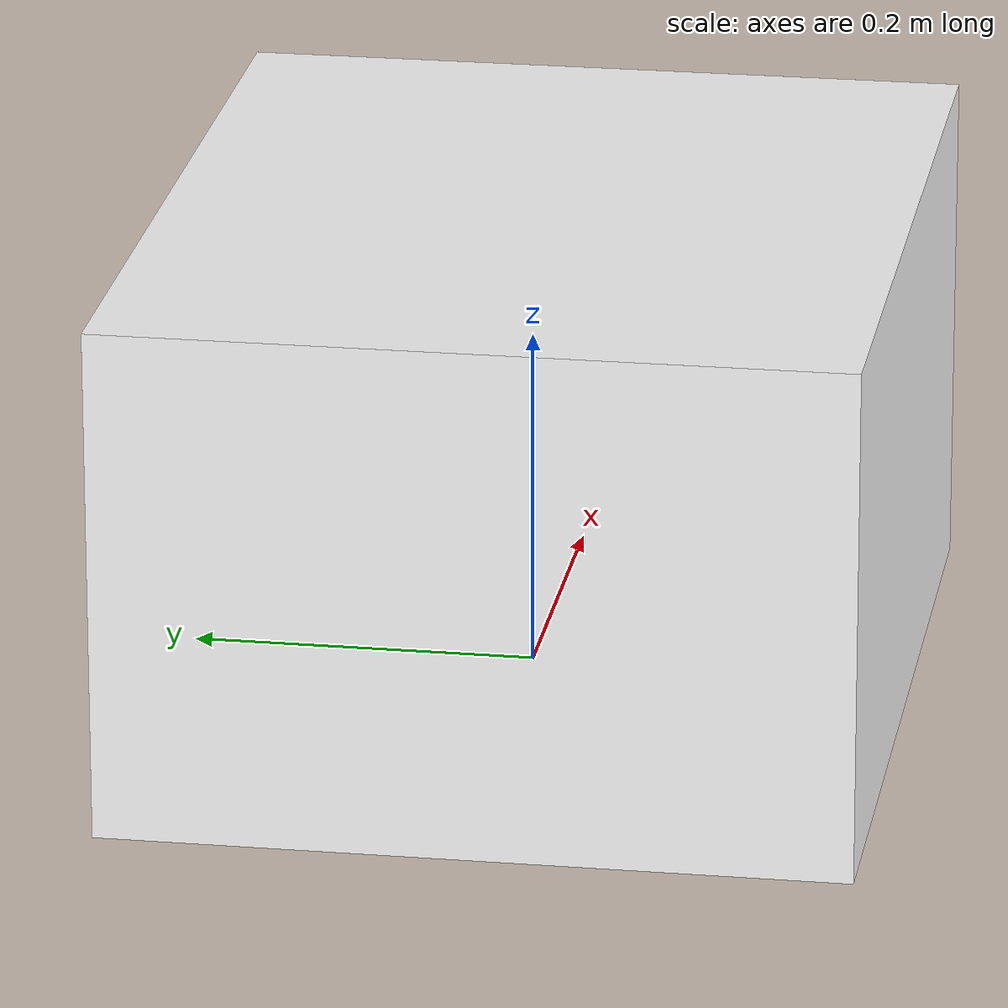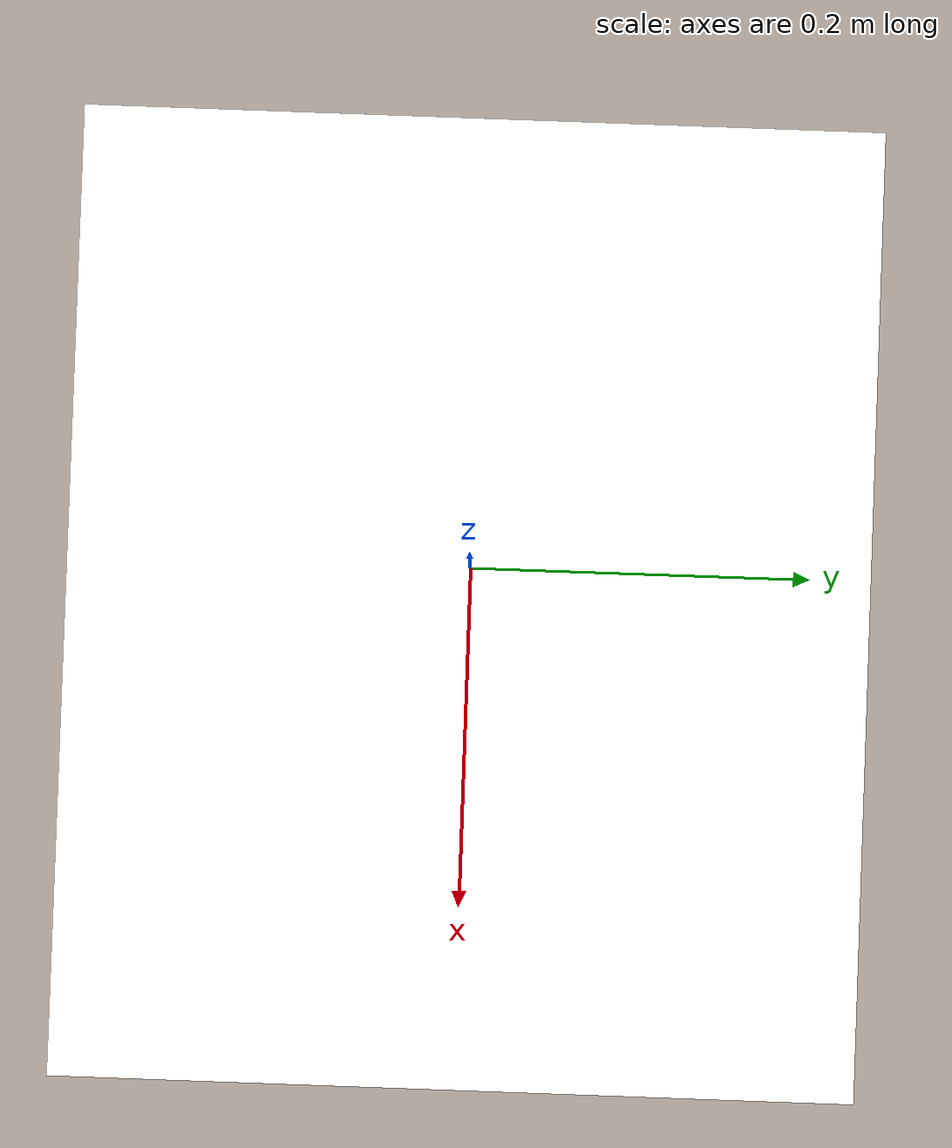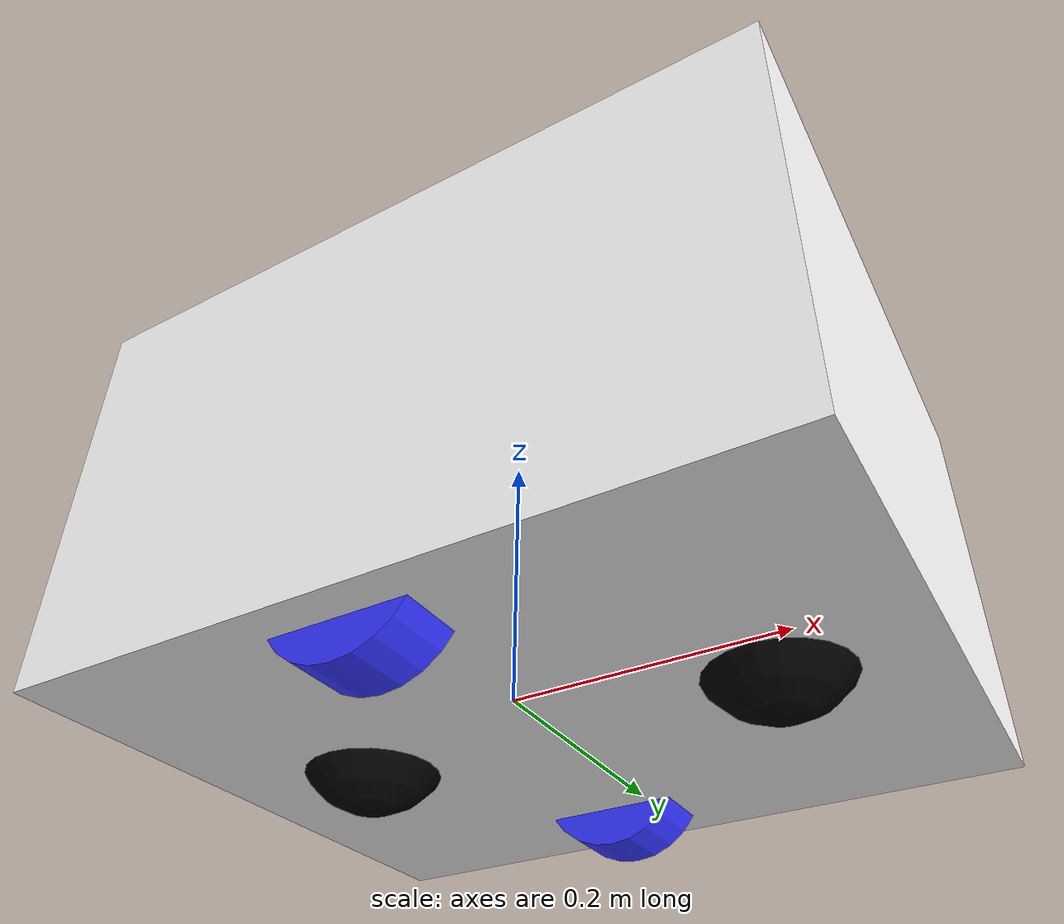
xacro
<?xml version="1.0"?>
<robot xmlns:xacro="http://www.ros.org/wiki/xacro">

    <xacro:include filename="inertial_macros.xacro" />

    <material name="white">
        <color rgba="1 1 1 1" />
    </material>

    <material name="orange">
        <color rgba="1 0.3 0.1 1" />
    </material>

    <material name="blue">
        <color rgba="0.2 0.2 1 1" />
    </material>

    <material name="black">
        <color rgba="0 0 0 1" />
    </material>

    <!--BASE
    LINK-->

    <link name="base_link">

    </link>

    <joint name="chassis_joint" type="fixed">
        <parent link="base_link" />
        <child link="chassis" />
        <origin xyz="-0.23 0 0" />
    </joint>

    <!--CHASSIS
    LINK-->

    <link name="chassis">
        <visual>
            <origin xyz="0.26 0 0.12" />
            <geometry>
                <box size="0.52 0.43 0.3" />
            </geometry>
            <material name="white" />
        </visual>
        <collision>
            <origin xyz="0.26 0 0.12" />
            <geometry>
                <box size="0.52 0.43 0.3" />
            </geometry>

        </collision>
        <xacro:inertial_box mass="2" x="0.52" y="0.43" z="0.3">
            <origin xyz="0.26 0 0.12" />
        </xacro:inertial_box>
    </link>
    <gazebo reference="chassis">
        <material>Gazebo/White</material>
    </gazebo>

    <!--LEFT
    WHEEL LINK-->
    <joint name="left_wheel_joint" type="continuous">
        <parent link="base_link" />
        <child link="left_wheel" />
        <origin xyz="0 0.165 0" rpy="-${pi/2} 0 0" />
        <axis xyz="0 0 1" />
    </joint>

    <link name="left_wheel">
        <visual>

            <geometry>
                <cylinder radius="0.0575" length="0.045" />
            </geometry>
            <material name="blue" />
        </visual>
        <collision>

            <geometry>
                <cylinder radius="0.0575" length="0.045" />
            </geometry>

        </collision>
        <xacro:inertial_cylinder mass="0.1" radius="0.0575" length="0.045">
            <origin xyz="0 0 0" rpy="0 0 0" />
        </xacro:inertial_cylinder>
    </link>
    <gazebo reference="left_wheel">
        <material>Gazebo/Blue</material>
    </gazebo>

    <!--RIGHT
    WHEEL LINK-->
    <joint name="right_wheel_joint" type="continuous">
        <parent link="base_link" />
        <child link="right_wheel" />
        <origin xyz="0 -0.165 0" rpy="${pi/2} 0 0" />
        <axis xyz="0 0 -1" />
    </joint>

    <link name="right_wheel">
        <visual>

            <geometry>
                <cylinder radius="0.0575" length="0.045" />
            </geometry>
            <material name="blue" />
        </visual>
        <collision>

            <geometry>
                <cylinder radius="0.0575" length="0.045" />
            </geometry>

        </collision>
        <xacro:inertial_cylinder mass="0.1" radius="0.0575" length="0.045">
            <origin xyz="0 0 0" rpy="0 0 0" />
        </xacro:inertial_cylinder>
    </link>
    <gazebo reference="right_wheel">
        <material>Gazebo/Blue</material>
    </gazebo>

    <!--FRONT
    CASTER WHEEL LINK-->
    <joint name="front_caster_wheel_joint" type="fixed">
        <parent link="base_link" />
        <child link="front_caster_wheel" />
        <origin xyz="0.1875 0 0" />
    </joint>

    <link name="front_caster_wheel">
        <visual>
            <geometry>
                <sphere radius="0.0575" />
            </geometry>
            <material name="black" />
        </visual>
        <collision>
            <geometry>
                <sphere radius="0.0575" />
            </geometry>

        </collision>
        <xacro:inertial_sphere mass="0.1" radius="0.0575">
            <origin xyz="0 0 0" rpy="0 0 0" />
        </xacro:inertial_sphere>
    </link>
    <gazebo reference="front_caster_wheel">
        <material>Gazebo/Black</material>
        <mu1 value="0.010" />
        <mu2 value="0.010" />
    </gazebo>

    <!--BACK
    CASTER WHEEL LINK-->
    <joint name="back_caster_wheel_joint" type="fixed">
        <parent link="base_link" />
        <child link="back_caster_wheel" />
        <origin xyz="-0.1175 0 0" />
    </joint>

    <link name="back_caster_wheel">
        <visual>
            <geometry>
                <sphere radius="0.0575" />
            </geometry>
            <material name="black" />
        </visual>
        <collision>
            <geometry>
                <sphere radius="0.0575" />
            </geometry>

        </collision>
        <xacro:inertial_sphere mass="0.1" radius="0.0575">
            <origin xyz="0 0 0" rpy="0 0 0" />
        </xacro:inertial_sphere>
    </link>
    <gazebo reference="back_caster_wheel">
        <material>Gazebo/Black</material>
        <mu1 value="0.010" />
        <mu2 value="0.010" />
    </gazebo>

</robot>
